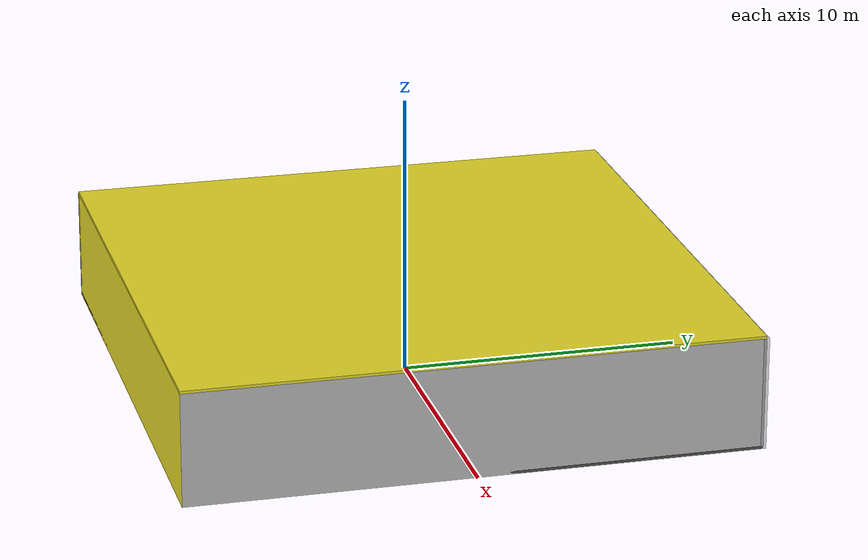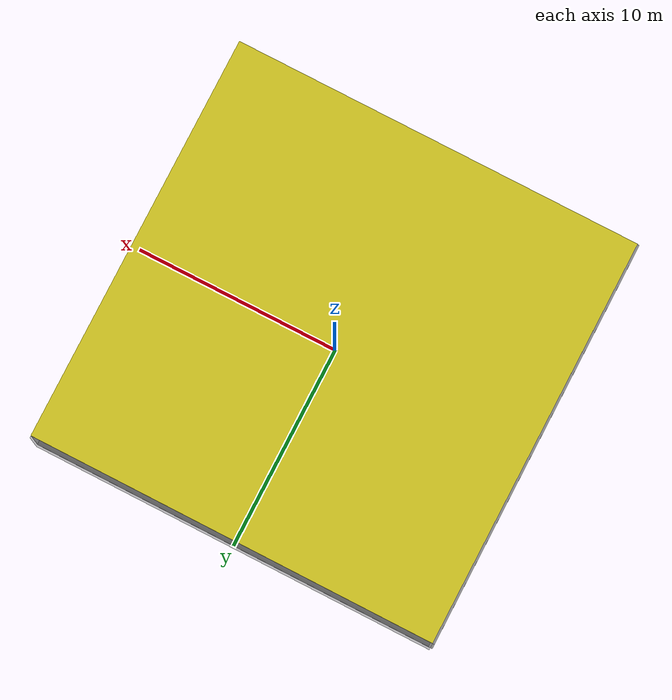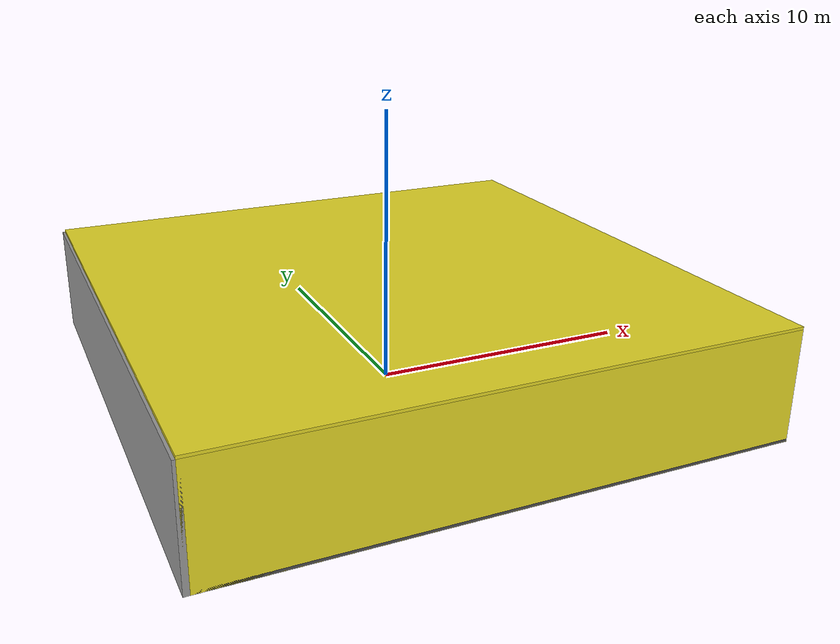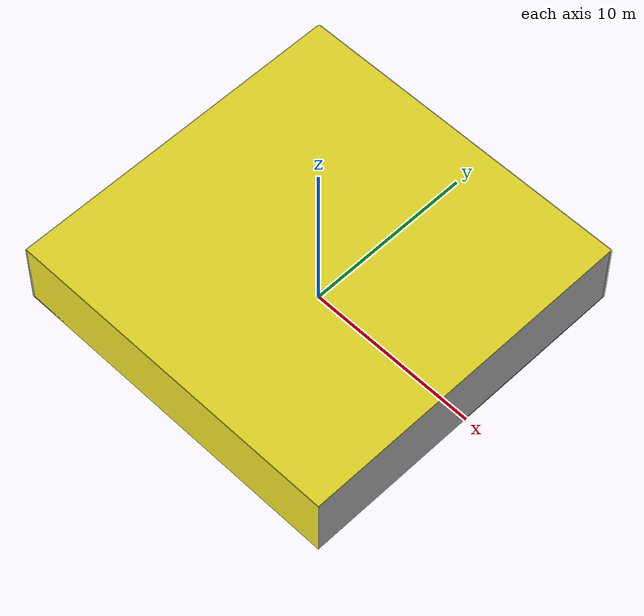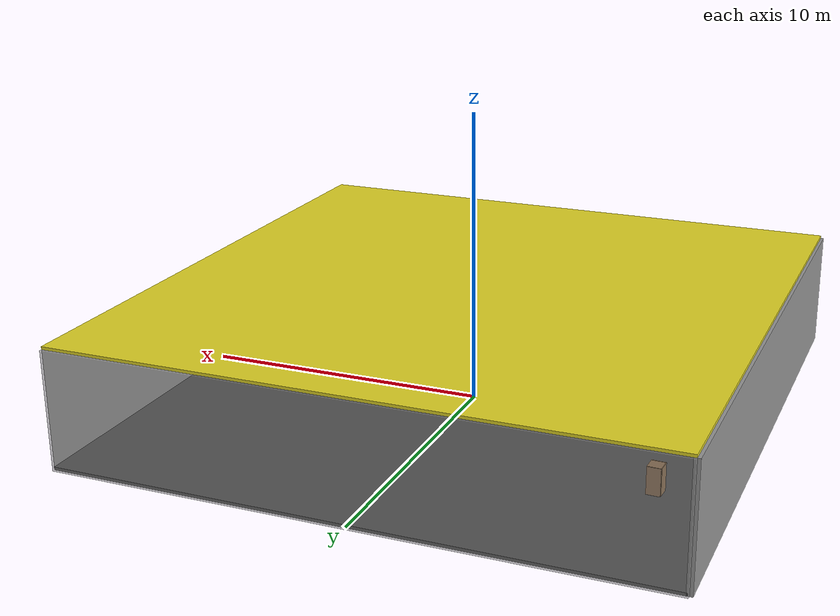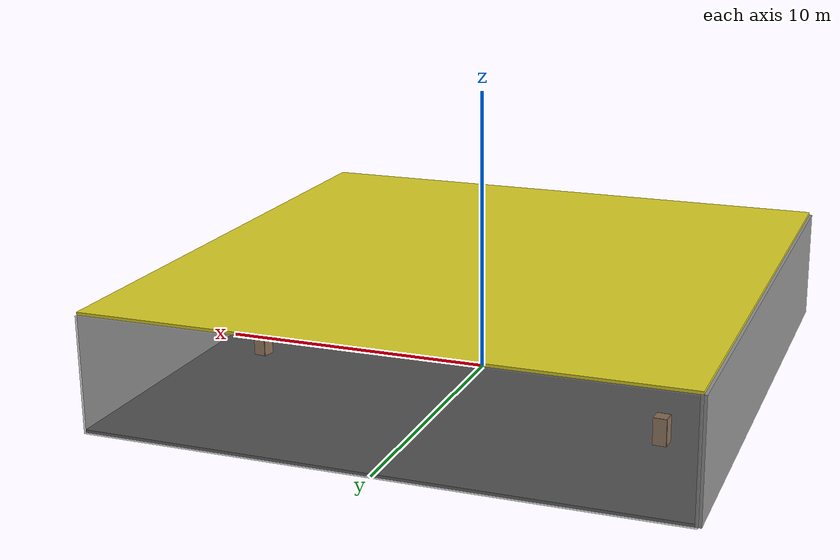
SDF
<sdf version="1.4">
 <world name="default">
  <physics type="ode">
   <max_step_size>0.001</max_step_size>
   <real_time_factor>1</real_time_factor>
   <real_time_update_rate>1000</real_time_update_rate>
   <gravity>0 0 -9.8</gravity>
  </physics>
  <scene><ambient>0.4 0.4 0.4 1</ambient><background>0.7 0.7 0.7 1</background><shadows>1</shadows></scene>
  <model name="Surrounding">
   <static>1</static>
   <link name="Ceiling">
    <collision name="Ceiling_Collision"><geometry><box><size>20 20 0.1</size></box></geometry></collision>
    <visual name="Ceiling_Visual">
     <geometry><box><size>20 20 0.1</size></box></geometry>
     <material>
      <script><uri>file://media/materials/scripts/gazebo.material</uri><name>Gazebo/YellowGlow</name></script>
     </material>
    </visual>
    <pose>0 0 4.05 0 0 0</pose>
   </link>
   <link name="Wall_South">
    <collision name="Wall_South_Collision">
     <geometry><box><size>20 0 4</size></box></geometry>
     <pose>0 0 2 0 -0 0</pose>
    </collision>
    <visual name="Wall_South_Visual">
     <pose>0 0 2 0 -0 0</pose>
     <geometry><box><size>20 0 4</size></box></geometry>
     <material>
      <script><uri>file://media/materials/scripts/gazebo.material</uri><name>Gazebo/Yellow</name></script>
     </material>
    </visual>
    <velocity_decay><linear>0</linear><angular>0</angular></velocity_decay>
    <pose>0 -10 0 0 -0 0</pose>
   </link>
   <link name="Wall_East">
    <collision name="Wall_21_Collision">
     <geometry><box><size>20 0 4</size></box></geometry>
     <pose>0 0 2 0 -0 0</pose>
    </collision>
    <visual name="Wall_21_Visual">
     <pose>0 0 2 0 -0 0</pose>
     <geometry><box><size>20 0 4</size></box></geometry>
     <material>
      <script><uri>file://media/materials/scripts/gazebo.material</uri><name>Gazebo/PioneerBody</name></script>
     </material>
    </visual>
    <velocity_decay><linear>0</linear><angular>0</angular></velocity_decay>
    <pose>10 0 0 0 -0 1.5708</pose>
   </link>
   <link name="Wall_North">
    <collision name="Wall_22_Collision">
     <geometry><box><size>20 0.2 4</size></box></geometry>
     <pose>0 0 2 0 -0 0</pose>
    </collision>
    <visual name="Wall_22_Visual">
     <pose>0 0 2 0 -0 0</pose>
     <geometry><box><size>20 0.2 4</size></box></geometry>
     <material>
      <script><uri>file://media/materials/scripts/gazebo.material</uri><name>Gazebo/GreyTransparent</name></script>
     </material>
    </visual>
    <velocity_decay><linear>0</linear><angular>0</angular></velocity_decay>
    <pose>0 10 0 0 -0 0</pose>
   </link>
   <link name="Wall_West">
    <collision name="Wall_23_Collision">
     <geometry><box><size>20 0.2 4</size></box></geometry>
     <pose>0 0 2 0 -0 0</pose>
    </collision>
    <visual name="Wall_23_Visual">
     <pose>0 0 2 0 -0 0</pose>
     <geometry><box><size>20 0.2 4</size></box></geometry>
     <material>
      <script><uri>file://media/materials/scripts/gazebo.material</uri><name>Gazebo/GreyGradientSky</name></script>
     </material>
    </visual>
    <velocity_decay><linear>0</linear><angular>0</angular></velocity_decay>
    <pose>-10 0 0 0 0 -1.5708</pose>
   </link>
   <link name="Ground_link">
    <collision name="collision">
     <pose>0 0 .05 0 -0 0</pose>
     <geometry><box><size>20 20 0.1</size></box></geometry>
    </collision>
    <visual name="visual">
     <pose>0 0 .05 0 -0 0</pose>
     <geometry><box><size>20 20 0.1</size></box></geometry>
     <material>
      <script><uri>file://media/materials/scripts/gazebo.material</uri><name>Gazebo/DarkGrey</name></script>
     </material>
    </visual>
   </link>
   <static>1</static>
  </model>
  <spherical_coordinates>
   <surface_model>EARTH_WGS84</surface_model>
   <latitude_deg>0</latitude_deg>
   <longitude_deg>0</longitude_deg>
   <elevation>0</elevation>
   <heading_deg>0</heading_deg>
  </spherical_coordinates>
  <light name="lightball_0" type="diffuse">
   <diffuse>0.8 0.8 0.8 1</diffuse>
   <specular>0.2 0.2 0.2 1</specular>
   <attenuation>
    <range>100</range>
    <constant>0.7</constant>
    <linear>0.01</linear>
    <quadratic>0.001</quadratic>
   </attenuation>
   <direction>-0.5 0.1 -0.9</direction>
   <pose>-1.74133329853 -9.36376031032 3.81597636633 0 0 0</pose>
  </light>
  <light name="lightball_1" type="diffuse">
   <diffuse>0.8 0.8 0.8 1</diffuse>
   <specular>0.2 0.2 0.2 1</specular>
   <attenuation>
    <range>100</range>
    <constant>0.7</constant>
    <linear>0.01</linear>
    <quadratic>0.001</quadratic>
   </attenuation>
   <direction>-0.5 0.1 -0.9</direction>
   <pose>-0.750860953611 8.73228167092 1.0498999587 0 0 0</pose>
  </light>
  <light name="lightball_2" type="diffuse">
   <diffuse>0.8 0.8 0.8 1</diffuse>
   <specular>0.2 0.2 0.2 1</specular>
   <attenuation>
    <range>100</range>
    <constant>0.7</constant>
    <linear>0.01</linear>
    <quadratic>0.001</quadratic>
   </attenuation>
   <direction>-0.5 0.1 -0.9</direction>
   <pose>4.73156929315 5.99917349183 1.50670707008 0 0 0</pose>
  </light>
  <light name="lightball_3" type="diffuse">
   <diffuse>0.8 0.8 0.8 1</diffuse>
   <specular>0.2 0.2 0.2 1</specular>
   <attenuation>
    <range>100</range>
    <constant>0.7</constant>
    <linear>0.01</linear>
    <quadratic>0.001</quadratic>
   </attenuation>
   <direction>-0.5 0.1 -0.9</direction>
   <pose>2.24993934489 3.07206752692 2.35853087769 0 0 0</pose>
  </light>
  <light name="lightball_4" type="diffuse">
   <diffuse>0.8 0.8 0.8 1</diffuse>
   <specular>0.2 0.2 0.2 1</specular>
   <attenuation>
    <range>100</range>
    <constant>0.7</constant>
    <linear>0.01</linear>
    <quadratic>0.001</quadratic>
   </attenuation>
   <direction>-0.5 0.1 -0.9</direction>
   <pose>-7.80245131163 -0.396808930915 3.79991754575 0 0 0</pose>
  </light>
  <light name="lightball_5" type="diffuse">
   <diffuse>0.8 0.8 0.8 1</diffuse>
   <specular>0.2 0.2 0.2 1</specular>
   <attenuation>
    <range>100</range>
    <constant>0.7</constant>
    <linear>0.01</linear>
    <quadratic>0.001</quadratic>
   </attenuation>
   <direction>-0.5 0.1 -0.9</direction>
   <pose>3.45270147142 6.7983142706 2.60013141441 0 0 0</pose>
  </light>
  <light name="lightball_6" type="diffuse">
   <diffuse>0.8 0.8 0.8 1</diffuse>
   <specular>0.2 0.2 0.2 1</specular>
   <attenuation>
    <range>100</range>
    <constant>0.7</constant>
    <linear>0.01</linear>
    <quadratic>0.001</quadratic>
   </attenuation>
   <direction>-0.5 0.1 -0.9</direction>
   <pose>-5.77430927066 -6.6616391661 2.18554023829 0 0 0</pose>
  </light>
  <light name="lightball_7" type="diffuse">
   <diffuse>0.8 0.8 0.8 1</diffuse>
   <specular>0.2 0.2 0.2 1</specular>
   <attenuation>
    <range>100</range>
    <constant>0.7</constant>
    <linear>0.01</linear>
    <quadratic>0.001</quadratic>
   </attenuation>
   <direction>-0.5 0.1 -0.9</direction>
   <pose>1.91026999492 -0.772333276338 2.05416262453 0 0 0</pose>
  </light>
  <light name="lightball_8" type="diffuse">
   <diffuse>0.8 0.8 0.8 1</diffuse>
   <specular>0.2 0.2 0.2 1</specular>
   <attenuation>
    <range>100</range>
    <constant>0.7</constant>
    <linear>0.01</linear>
    <quadratic>0.001</quadratic>
   </attenuation>
   <direction>-0.5 0.1 -0.9</direction>
   <pose>0.467872002482 -1.32019194388 2.6230543774 0 0 0</pose>
  </light>
  <include><uri>model://cabinet</uri><pose>-7.70621744496 4.80481567608 0 0 0 3.09490709376</pose></include>
  <include><uri>model://cabinet</uri><pose>-2.23729243569 -5.28014950724 0 0 0 1.00148076292</pose></include>
  <include>
   <uri>model://robocup_3Dsim_goal</uri>
   <pose>0.713987531481 -1.14052737389 0 0 0 1.93271104199</pose>
  </include>
  <include><uri>model://cabinet</uri><pose>7.91700021781 1.69859690297 0 0 0 2.95736981054</pose></include>
 </world>
</sdf>

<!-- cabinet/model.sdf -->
<sdf version="1.5">
  <model name="cabinet">
    <static>true</static>
    <link name="cabinet_bottom_plate">
      <inertial>
        <pose>0 0 -1 0 0 0</pose>
        <inertia>
          <ixx>2.050000</ixx>
          <ixy>0</ixy>
          <ixz>0</ixz>
          <iyy>2.050000</iyy>
          <iyz>0</iyz>
          <izz>2.050000</izz>
        </inertia>
        <mass>25.000000</mass>
      </inertial>
      <collision name="cabinet_bottom_plate_geom">
        <pose>0 0 0.010000 0 0 0</pose>
        <geometry>
          <box>
            <size>0.450000 0.450000 0.020000</size>
          </box>
        </geometry>
      </collision>
      <visual name="cabinet_bottom_plate_geom_visual">
        <pose>0 0 0.010000 0 0 0</pose>
        <geometry>
          <box>
            <size>0.450000 0.450000 0.020000</size>
          </box>
        </geometry>
        <material>
          <script>
            <uri>model://media/materials/scripts/gazebo.material</uri>
            <name>Gazebo/Wood</name>
          </script>
        </material>
      </visual>
      <collision name="cabinet_bottom_plate_geom_cabinet_back_plate">
        <pose>0.235000 0 0.510000 0 0 0</pose>
        <geometry>
          <box>
            <size>0.020000 0.450000 1.020000</size>
          </box>
        </geometry>
      </collision>
      <visual name="cabinet_bottom_plate_geom_cabinet_back_plate_visual">
        <pose>0.235000 0 0.510000 0 0 0</pose>
        <geometry>
          <box>
            <size>0.020000 0.450000 1.020000</size>
          </box>
        </geometry>
        <material>
          <script>
            <uri>model://media/materials/scripts/gazebo.material</uri>
            <name>Gazebo/Wood</name>
          </script>
        </material>
      </visual>
      <collision name="cabinet_bottom_plate_geom_cabinet_left_plate">
        <pose>0 0.235000 0.510000 0 0 0</pose>
        <geometry>
          <box>
            <size>0.450000 0.020000 1.020000</size>
          </box>
        </geometry>
      </collision>
      <visual name="cabinet_bottom_plate_geom_cabinet_left_plate_visual">
        <pose>0 0.235000 0.510000 0 0 0</pose>
        <geometry>
          <box>
            <size>0.450000 0.020000 1.020000</size>
          </box>
        </geometry>
        <material>
          <script>
            <uri>model://media/materials/scripts/gazebo.material</uri>
            <name>Gazebo/Wood</name>
          </script>
        </material>
      </visual>
      <collision name="cabinet_bottom_plate_geom_cabinet_middle_plate">
        <pose>0 0 0.510000 0 0 0</pose>
        <geometry>
          <box>
            <size>0.450000 0.450000 0.020000</size>
          </box>
        </geometry>
      </collision>
      <visual name="cabinet_bottom_plate_geom_cabinet_middle_plate_visual">
        <pose>0 0 0.510000 0 0 0</pose>
        <geometry>
          <box>
            <size>0.450000 0.450000 0.020000</size>
          </box>
        </geometry>
        <material>
          <script>
            <uri>model://media/materials/scripts/gazebo.material</uri>
            <name>Gazebo/Wood</name>
          </script>
        </material>
      </visual>
      <collision name="cabinet_bottom_plate_geom_cabinet_right_plate">
        <pose>0 -0.235000 0.510000 0 0 0</pose>
        <geometry>
          <box>
            <size>0.450000 0.020000 1.020000</size>
          </box>
        </geometry>
      </collision>
      <visual name="cabinet_bottom_plate_geom_cabinet_right_plate_visual">
        <pose>0 -0.235000 0.510000 0 0 0</pose>
        <geometry>
          <box>
            <size>0.450000 0.020000 1.020000</size>
          </box>
        </geometry>
        <material>
          <script>
            <uri>model://media/materials/scripts/gazebo.material</uri>
            <name>Gazebo/Wood</name>
          </script>
        </material>
      </visual>
      <collision name="cabinet_bottom_plate_geom_cabinet_top_plate">
        <pose>0 0 1.010000 0 0 0</pose>
        <geometry>
          <box>
            <size>0.450000 0.450000 0.020000</size>
          </box>
        </geometry>
      </collision>
      <visual name="cabinet_bottom_plate_geom_cabinet_top_plate_visual">
        <pose>0 0 1.010000 0 0 0</pose>
        <geometry>
          <box>
            <size>0.450000 0.450000 0.020000</size>
          </box>
        </geometry>
        <material>
          <script>
            <uri>model://media/materials/scripts/gazebo.material</uri>
            <name>Gazebo/Wood</name>
          </script>
        </material>
      </visual>
    </link>
  </model>
</sdf>

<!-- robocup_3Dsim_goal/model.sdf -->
<sdf version="1.5">
  <model name="robocup_3d_goal">
    <static>true</static>
    <link name="left_post">
      <pose>0 1.05 0.45 0 0 0</pose>
      <collision name="collision">
        <geometry>
          <cylinder>
            <radius>0.05</radius>
            <length>0.9</length>
          </cylinder>
        </geometry>
      </collision>
      <visual name="visual">
        <geometry>
          <cylinder>
            <radius>0.05</radius>
            <length>0.9</length>
          </cylinder>
        </geometry>
        <material>
          <script>
            <uri>file://media/materials/scripts/gazebo.material</uri>
            <name>Gazebo/ZincYellow</name>
          </script>
        </material>
      </visual>
    </link>
    <link name="left_support_horiz_lower">
      <pose>0.30 1.05 0.01 0 0 0</pose>
      <collision name="collision">
        <geometry>
          <box>
            <size>0.50 0.02 0.02</size>
          </box>
        </geometry>
      </collision>
      <visual name="visual">
        <geometry>
          <box>
            <size>0.50 0.02 0.02</size>
          </box>
        </geometry>
        <material>
          <script>
            <uri>file://media/materials/scripts/gazebo.material</uri>
            <name>Gazebo/White</name>
          </script>
        </material>
      </visual>
    </link>
    <link name="left_support_horiz_upper">
      <pose>0.30 1.05 0.79 0 0 0</pose>
      <collision name="collision">
        <geometry>
          <box>
            <size>0.50 0.02 0.02</size>
          </box>
        </geometry>
      </collision>
      <visual name="visual">
        <geometry>
          <box>
            <size>0.50 0.02 0.02</size>
          </box>
        </geometry>
        <material>
          <script>
            <uri>file://media/materials/scripts/gazebo.material</uri>
            <name>Gazebo/White</name>
          </script>
        </material>
      </visual>
    </link>
    <link name="left_support_vertical">
      <pose>0.56 1.05 0.4 0 1.5708 0</pose>
      <collision name="collision">
        <geometry>
          <box>
            <size>0.80 0.02 0.02</size>
          </box>
        </geometry>
      </collision>
      <visual name="visual">
        <geometry>
          <box>
            <size>0.80 0.02 0.02</size>
          </box>
        </geometry>
        <material>
          <script>
            <uri>file://media/materials/scripts/gazebo.material</uri>
            <name>Gazebo/White</name>
          </script>
        </material>
      </visual>
    </link>
    <link name="right_support_horiz_lower">
      <pose>0.30 -1.05 0.01 0 0 0</pose>
      <collision name="collision">
        <geometry>
          <box>
            <size>0.50 0.02 0.02</size>
          </box>
        </geometry>
      </collision>
      <visual name="visual">
        <geometry>
          <box>
            <size>0.50 0.02 0.02</size>
          </box>
        </geometry>
        <material>
          <script>
            <uri>file://media/materials/scripts/gazebo.material</uri>
            <name>Gazebo/White</name>
          </script>
        </material>
      </visual>
    </link>
    <link name="right_support_horiz_upper">
      <pose>0.30 -1.05 0.79 0 0 0</pose>
      <collision name="collision">
        <geometry>
          <box>
            <size>0.50 0.02 0.02</size>
          </box>
        </geometry>
      </collision>
      <visual name="visual">
        <geometry>
          <box>
            <size>0.50 0.02 0.02</size>
          </box>
        </geometry>
        <material>
          <script>
            <uri>file://media/materials/scripts/gazebo.material</uri>
            <name>Gazebo/White</name>
          </script>
        </material>
      </visual>
    </link>
    <link name="right_support_vertical">
      <pose>0.56 -1.05 0.4 0 1.5708 0</pose>
      <collision name="collision">
        <geometry>
          <box>
            <size>0.80 0.02 0.02</size>
          </box>
        </geometry>
      </collision>
      <visual name="visual">
        <geometry>
          <box>
            <size>0.80 0.02 0.02</size>
          </box>
        </geometry>
        <material>
          <script>
            <uri>file://media/materials/scripts/gazebo.material</uri>
            <name>Gazebo/White</name>
          </script>
        </material>
      </visual>
    </link>
    <link name="center_support_horiz_lower">
      <pose>0.56 0 0.01 0 1.5708 0</pose>
      <collision name="collision">
        <geometry>
          <box>
            <size>0.02 2.08 0.02</size>
          </box>
        </geometry>
      </collision>
      <visual name="visual">
        <geometry>
          <box>
            <size>0.02 2.08 0.02</size>
          </box>
        </geometry>
        <material>
          <script>
            <uri>file://media/materials/scripts/gazebo.material</uri>
            <name>Gazebo/White</name>
          </script>
        </material>
      </visual>
    </link>
    <link name="center_support_horiz_upper">
      <pose>0.56 0 0.79 0 1.5708 0</pose>
      <collision name="collision">
        <geometry>
          <box>
            <size>0.02 2.08 0.02</size>
          </box>
        </geometry>
      </collision>
      <visual name="visual">
        <geometry>
          <box>
            <size>0.02 2.08 0.02</size>
          </box>
        </geometry>
        <material>
          <script>
            <uri>file://media/materials/scripts/gazebo.material</uri>
            <name>Gazebo/White</name>
          </script>
        </material>
      </visual>
    </link>
    <link name="right_post">
      <pose>0 -1.05 0.45 0 0 0</pose>
      <collision name="collision">
        <geometry>
          <cylinder>
            <radius>0.05</radius>
            <length>0.9</length>
          </cylinder>
        </geometry>
      </collision>
      <visual name="visual">
        <geometry>
          <cylinder>
            <radius>0.05</radius>
            <length>0.9</length>
          </cylinder>
        </geometry>
        <material>
          <script>
            <uri>file://media/materials/scripts/gazebo.material</uri>
            <name>Gazebo/ZincYellow</name>
          </script>
        </material>
      </visual>
    </link>
    <link name="crossbar">
      <pose>0 0 0.85 1.57 1.57 0</pose>
      <collision name="collision">
        <geometry>
          <cylinder>
            <radius>0.05</radius>
            <length>2.0</length>
          </cylinder>
        </geometry>
      </collision>
      <visual name="visual">
        <geometry>
          <cylinder>
            <radius>0.05</radius>
            <length>2.0</length>
          </cylinder>
        </geometry>
        <material>
          <script>
            <uri>file://media/materials/scripts/gazebo.material</uri>
            <name>Gazebo/ZincYellow</name>
          </script>
        </material>
      </visual>
    </link>
    <link name="center_net">
      <pose>0.56 0 0.40 0 0 0</pose>
      <collision name="collision">
        <geometry>
          <box>
            <size>0.01 2.1 0.80</size>
          </box>
        </geometry>
      </collision>
      <visual name="visual">
        <geometry>
          <box>
            <size>0.01 2.1 0.80</size>
          </box>
        </geometry>
        <material>
          <script>
            <uri>model://../model_source/models/robocup09_spl_field/materials/scripts/</uri>
            <uri>model://../model_source/models/robocup09_spl_field/materials/textures/</uri>
            <name>RoboCup/Net</name>
          </script>
        </material>
      </visual>
    </link>
    <link name="left_net">
      <pose>0.30 1.05 0.40 0 0 0</pose>
      <collision name="collision">
        <geometry>
          <box>
            <size>0.50 0.01 0.76</size>
          </box>
        </geometry>
      </collision>
      <visual name="visual">
        <geometry>
          <box>
            <size>0.50 0.01 0.76</size>
          </box>
        </geometry>
        <material>
          <script>
            <uri>model://../model_source/models/robocup09_spl_field/materials/scripts/</uri>
            <uri>model://../model_source/models/robocup09_spl_field/materials/textures/</uri>
            <name>RoboCup/Net</name>
          </script>
        </material>
      </visual>
    </link>
    <link name="right_net">
      <pose>0.30 -1.05 0.40 0 0 0</pose>
      <collision name="collision">
        <geometry>
          <box>
            <size>0.50 0.01 0.76</size>
          </box>
        </geometry>
      </collision>
      <visual name="visual">
        <geometry>
          <box>
            <size>0.50 0.01 0.76</size>
          </box>
        </geometry>
        <material>
          <script>
            <uri>model://../model_source/models/robocup09_spl_field/materials/scripts/</uri>
            <uri>model://../model_source/models/robocup09_spl_field/materials/textures/</uri>
            <name>RoboCup/Net</name>
          </script>
        </material>
      </visual>
    </link>
  </model>
</sdf>
